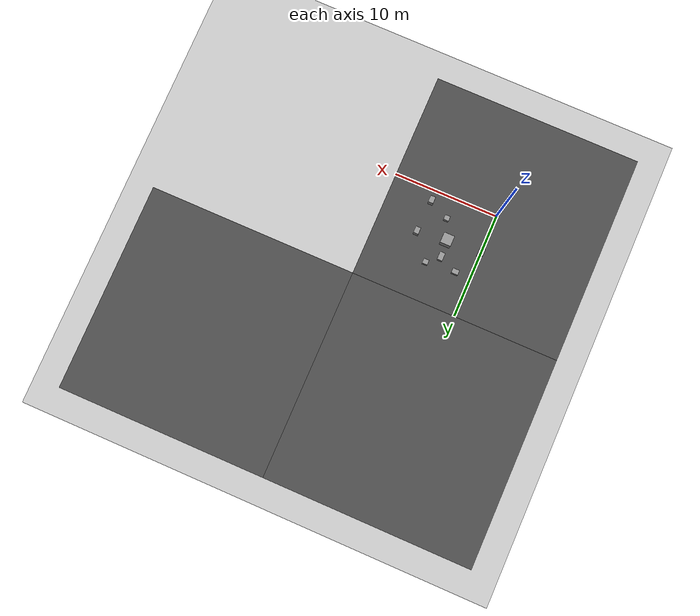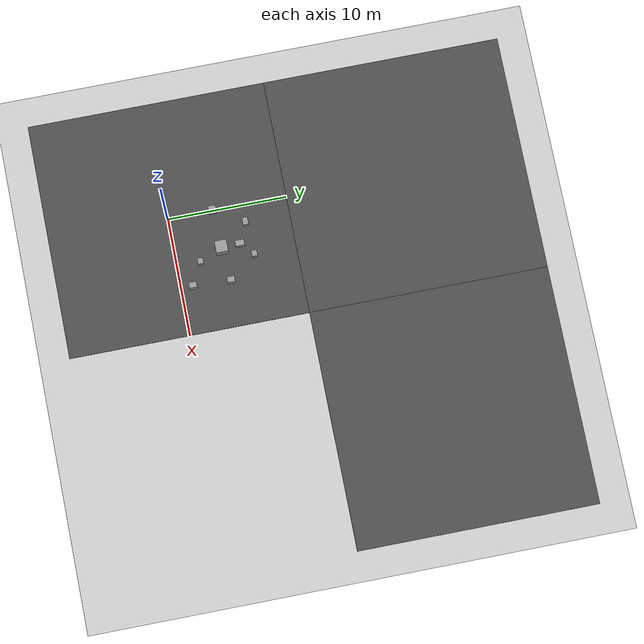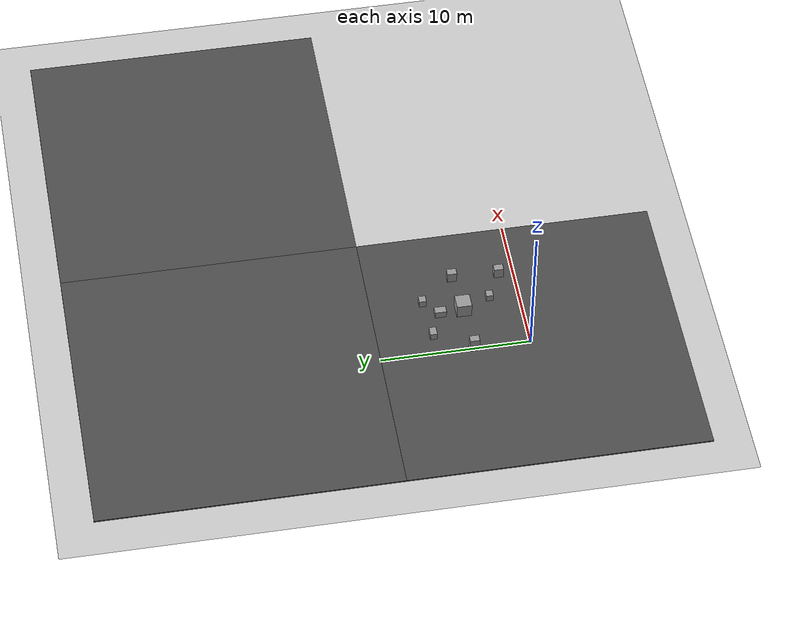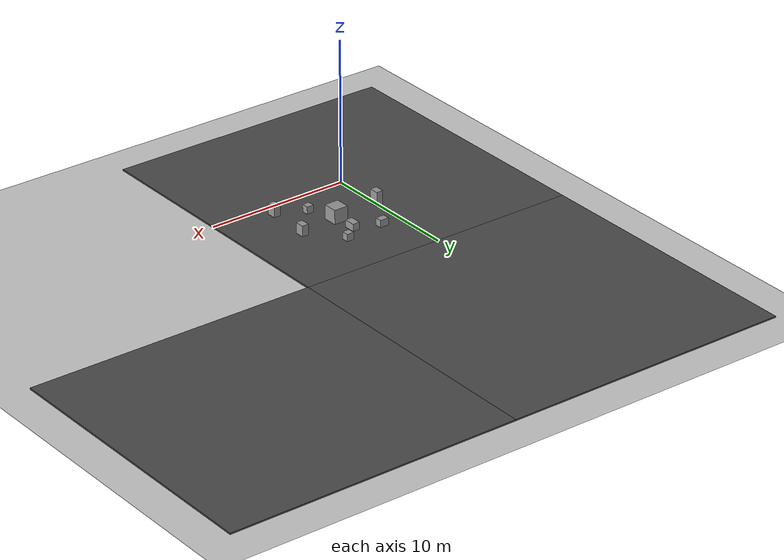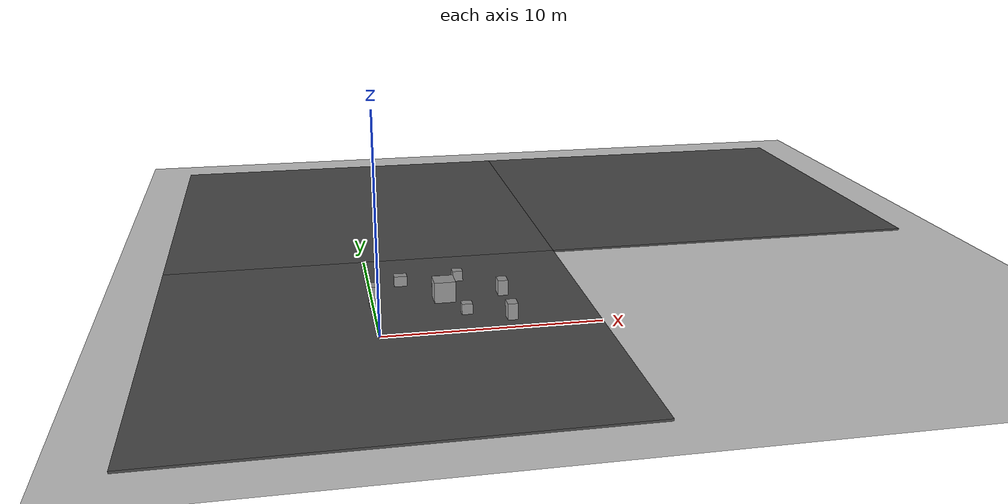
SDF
<sdf version="1.7">
 <world name="default">
  <model name="ground_plane">
   <static>1</static>
   <link name="link">
    <collision name="collision">
     <geometry><plane><normal>0 0 1</normal><size>100 100</size></plane></geometry>
     <surface>
      <contact><collide_bitmask>65535</collide_bitmask></contact>
      <friction><ode><mu>100</mu><mu2>50</mu2></ode></friction>
     </surface>
    </collision>
    <visual name="visual">
     <cast_shadows>0</cast_shadows>
     <geometry><plane><normal>0 0 1</normal><size>100 100</size></plane></geometry>
     <material>
      <script><uri>file://media/materials/scripts/gazebo.material</uri><name>Gazebo/Grey</name></script>
     </material>
    </visual>
   </link>
  </model>
  <model name="asphalt_plane">
   <static>1</static>
   <link name="link">
    <collision name="collision"><geometry><box><size>20 20 0.1</size></box></geometry></collision>
    <visual name="visual">
     <cast_shadows>0</cast_shadows>
     <geometry><box><size>20 20 0.1</size></box></geometry>
     <material>
      <script>
       <uri>model://asphalt_plane/materials/scripts</uri>
       <uri>model://asphalt_plane/materials/textures</uri>
       <name>vrc/asphalt</name>
      </script>
     </material>
    </visual>
   </link>
  </model>
  <model name="asphalt_plane_clone_5">
   <static>1</static>
   <link name="link">
    <collision name="collision"><geometry><box><size>20 20 0.1</size></box></geometry></collision>
    <visual name="visual">
     <cast_shadows>0</cast_shadows>
     <geometry><box><size>20 20 0.1</size></box></geometry>
     <material>
      <script>
       <uri>model://asphalt_plane/materials/scripts</uri>
       <uri>model://asphalt_plane/materials/textures</uri>
       <name>vrc/asphalt</name>
      </script>
     </material>
    </visual>
   </link>
   <pose>0 20 0 0 -0 0</pose>
  </model>
  <model name="asphalt_plane_clone_6">
   <static>1</static>
   <link name="link">
    <collision name="collision"><geometry><box><size>20 20 0.1</size></box></geometry></collision>
    <visual name="visual">
     <cast_shadows>0</cast_shadows>
     <geometry><box><size>20 20 0.1</size></box></geometry>
     <material>
      <script>
       <uri>model://asphalt_plane/materials/scripts</uri>
       <uri>model://asphalt_plane/materials/textures</uri>
       <name>vrc/asphalt</name>
      </script>
     </material>
    </visual>
   </link>
   <pose>20 20 0 0 -0 0</pose>
  </model>
  <model name="unit_box">
   <pose>3.3249 3.92532 0.549995 -9e-06 -1e-06 0</pose>
   <link name="link">
    <inertial>
     <mass>1</mass>
     <inertia>
      <ixx>0.166667</ixx>
      <ixy>0</ixy>
      <ixz>0</ixz>
      <iyy>0.166667</iyy>
      <iyz>0</iyz>
      <izz>0.166667</izz>
     </inertia>
    </inertial>
    <collision name="collision"><geometry><box><size>1 1 1</size></box></geometry></collision>
    <visual name="visual">
     <geometry><box><size>1 1 1</size></box></geometry>
     <material>
      <script><name>Gazebo/Grey</name><uri>file://media/materials/scripts/gazebo.material</uri></script>
     </material>
    </visual>
   </link>
  </model>
  <model name="unit_box_0">
   <pose>4.32444 6.49188 0.301356 0 -0 1e-06</pose>
   <link name="link">
    <inertial>
     <mass>1</mass>
     <inertia>
      <ixx>0.166667</ixx>
      <ixy>0</ixy>
      <ixz>0</ixz>
      <iyy>0.166667</iyy>
      <iyz>0</iyz>
      <izz>0.166667</izz>
     </inertia>
    </inertial>
    <collision name="collision">
     <geometry><box><size>0.495294 0.467832 0.502712</size></box></geometry>
    </collision>
    <visual name="visual">
     <geometry><box><size>0.495294 0.467832 0.502712</size></box></geometry>
     <material>
      <script><name>Gazebo/Grey</name><uri>file://media/materials/scripts/gazebo.material</uri></script>
     </material>
    </visual>
   </link>
  </model>
  <model name="unit_box_0_clone">
   <pose>3.22245 5.47551 0.301354 0 8e-06 2e-06</pose>
   <link name="link">
    <inertial>
     <mass>1</mass>
     <inertia>
      <ixx>0.166667</ixx>
      <ixy>0</ixy>
      <ixz>0</ixz>
      <iyy>0.166667</iyy>
      <iyz>0</iyz>
      <izz>0.166667</izz>
     </inertia>
    </inertial>
    <collision name="collision">
     <geometry><box><size>0.495294 0.766084 0.502712</size></box></geometry>
    </collision>
    <visual name="visual">
     <geometry><box><size>0.495294 0.766084 0.502712</size></box></geometry>
     <material>
      <script><name>Gazebo/Grey</name><uri>file://media/materials/scripts/gazebo.material</uri></script>
     </material>
    </visual>
   </link>
  </model>
  <model name="unit_box_0_clone_0">
   <pose>1.49943 6.26197 0.301354 -7e-06 0 1e-06</pose>
   <link name="link">
    <inertial>
     <mass>1</mass>
     <inertia>
      <ixx>0.166667</ixx>
      <ixy>0</ixy>
      <ixz>0</ixz>
      <iyy>0.166667</iyy>
      <iyz>0</iyz>
      <izz>0.166667</izz>
     </inertia>
    </inertial>
    <collision name="collision">
     <geometry><box><size>0.622689 0.467832 0.502712</size></box></geometry>
    </collision>
    <visual name="visual">
     <geometry><box><size>0.622689 0.467832 0.502712</size></box></geometry>
     <material>
      <script><name>Gazebo/Grey</name><uri>file://media/materials/scripts/gazebo.material</uri></script>
     </material>
    </visual>
   </link>
  </model>
  <model name="unit_box_0_clone_4">
   <pose>4.11232 2.00992 0.301356 0 -0 1e-06</pose>
   <link name="link">
    <inertial>
     <mass>1</mass>
     <inertia>
      <ixx>0.166667</ixx>
      <ixy>0</ixy>
      <ixz>0</ixz>
      <iyy>0.166667</iyy>
      <iyz>0</iyz>
      <izz>0.166667</izz>
     </inertia>
    </inertial>
    <collision name="collision">
     <geometry><box><size>0.495294 0.467832 0.502712</size></box></geometry>
    </collision>
    <visual name="visual">
     <geometry><box><size>0.495294 0.467832 0.502712</size></box></geometry>
     <material>
      <script><name>Gazebo/Grey</name><uri>file://media/materials/scripts/gazebo.material</uri></script>
     </material>
    </visual>
   </link>
  </model>
  <model name="unit_box_3_clone_1">
   <pose>6.15547 4.18849 0.422713 0 -0 0</pose>
   <link name="link">
    <inertial>
     <mass>1</mass>
     <inertia>
      <ixx>0.166667</ixx>
      <ixy>0</ixy>
      <ixz>0</ixz>
      <iyy>0.166667</iyy>
      <iyz>0</iyz>
      <izz>0.166667</izz>
     </inertia>
    </inertial>
    <collision name="collision">
     <geometry><box><size>0.473217 0.637104 0.745427</size></box></geometry>
    </collision>
    <visual name="visual">
     <geometry><box><size>0.473217 0.637104 0.745427</size></box></geometry>
     <material>
      <script><name>Gazebo/Grey</name><uri>file://media/materials/scripts/gazebo.material</uri></script>
     </material>
    </visual>
   </link>
  </model>
  <model name="unit_box_3_clone_5">
   <pose>6.02964 1.04247 0.43567 -0 -0 -0</pose>
   <link name="link">
    <inertial>
     <mass>1</mass>
     <inertia>
      <ixx>0.166667</ixx>
      <ixy>0</ixy>
      <ixz>0</ixz>
      <iyy>0.166667</iyy>
      <iyz>0</iyz>
      <izz>0.166667</izz>
     </inertia>
    </inertial>
    <collision name="collision"><geometry><box><size>0.473217 0.637104 0.77134</size></box></geometry></collision>
    <visual name="visual">
     <geometry><box><size>0.473217 0.637104 0.77134</size></box></geometry>
     <material>
      <script><name>Gazebo/Grey</name><uri>file://media/materials/scripts/gazebo.material</uri></script>
     </material>
    </visual>
   </link>
  </model>
  <model name="unit_box_3_clone_6">
   <pose>0.040984 3.77149 0.55 0 -0 0</pose>
   <link name="link">
    <inertial>
     <mass>1</mass>
     <inertia>
      <ixx>0.166667</ixx>
      <ixy>0</ixy>
      <ixz>0</ixz>
      <iyy>0.166667</iyy>
      <iyz>0</iyz>
      <izz>0.166667</izz>
     </inertia>
    </inertial>
    <collision name="collision"><geometry><box><size>0.473217 0.637104 1</size></box></geometry></collision>
    <visual name="visual">
     <geometry><box><size>0.473217 0.637104 1</size></box></geometry>
     <material>
      <script><name>Gazebo/Grey</name><uri>file://media/materials/scripts/gazebo.material</uri></script>
     </material>
    </visual>
   </link>
  </model>
 </world>
</sdf>
